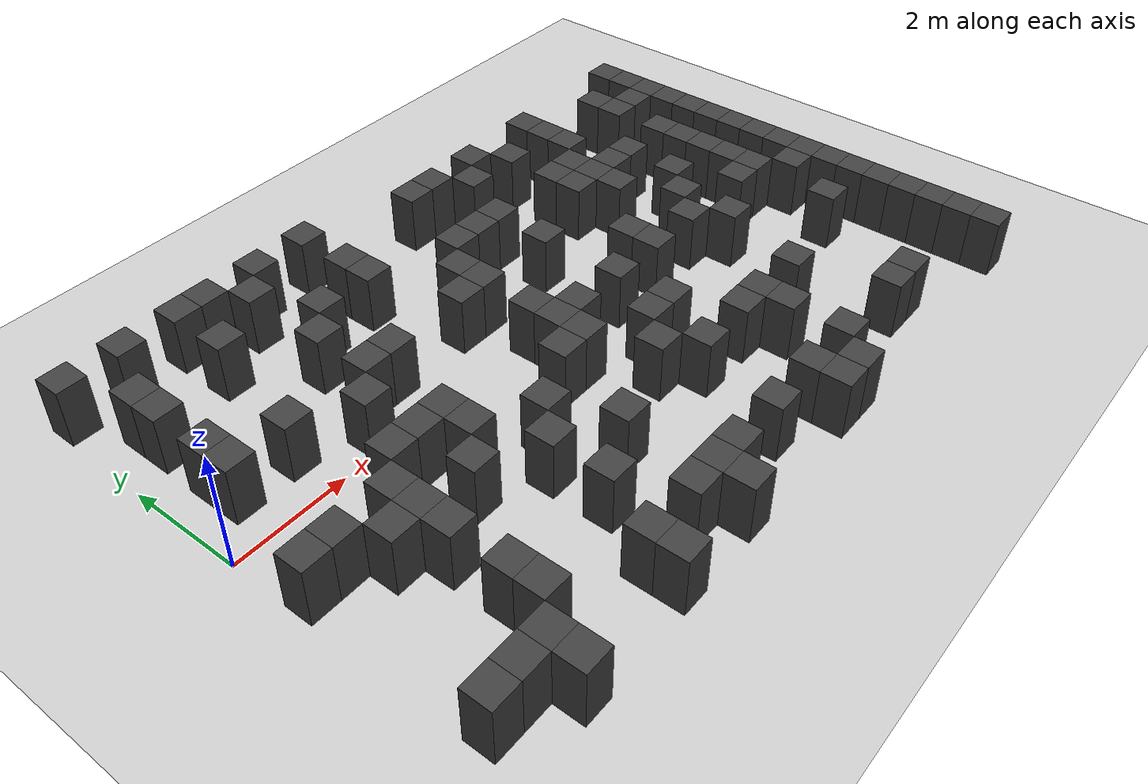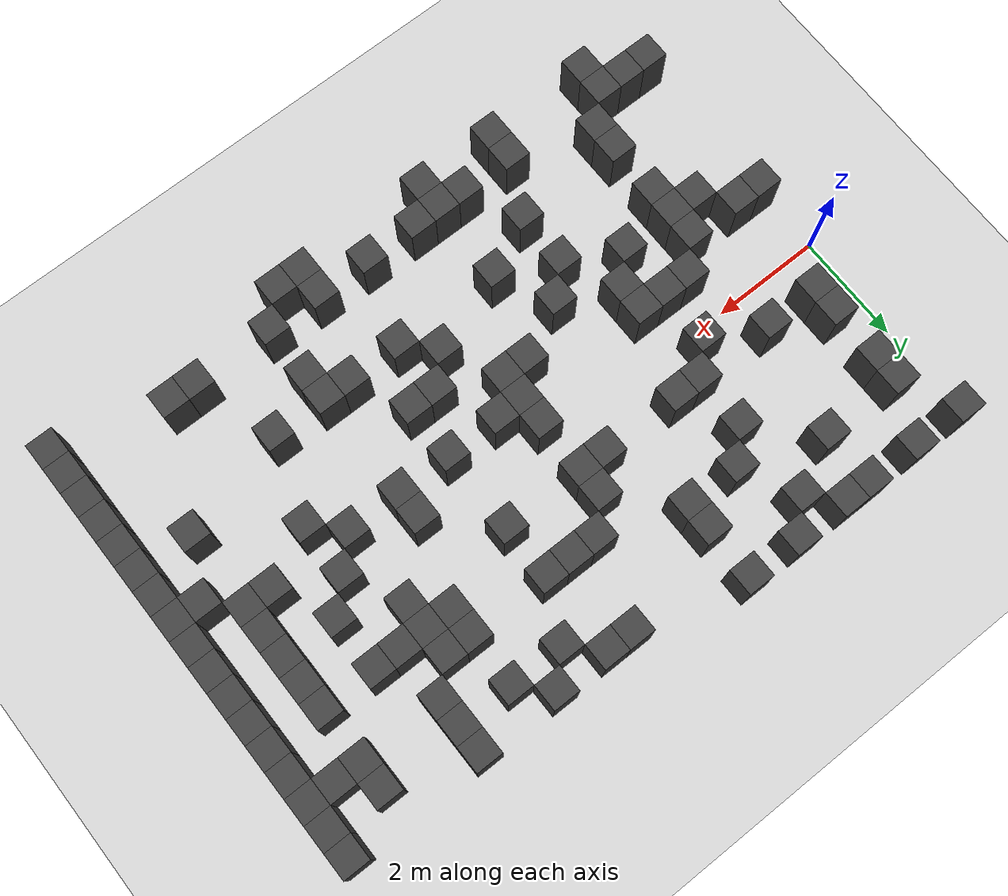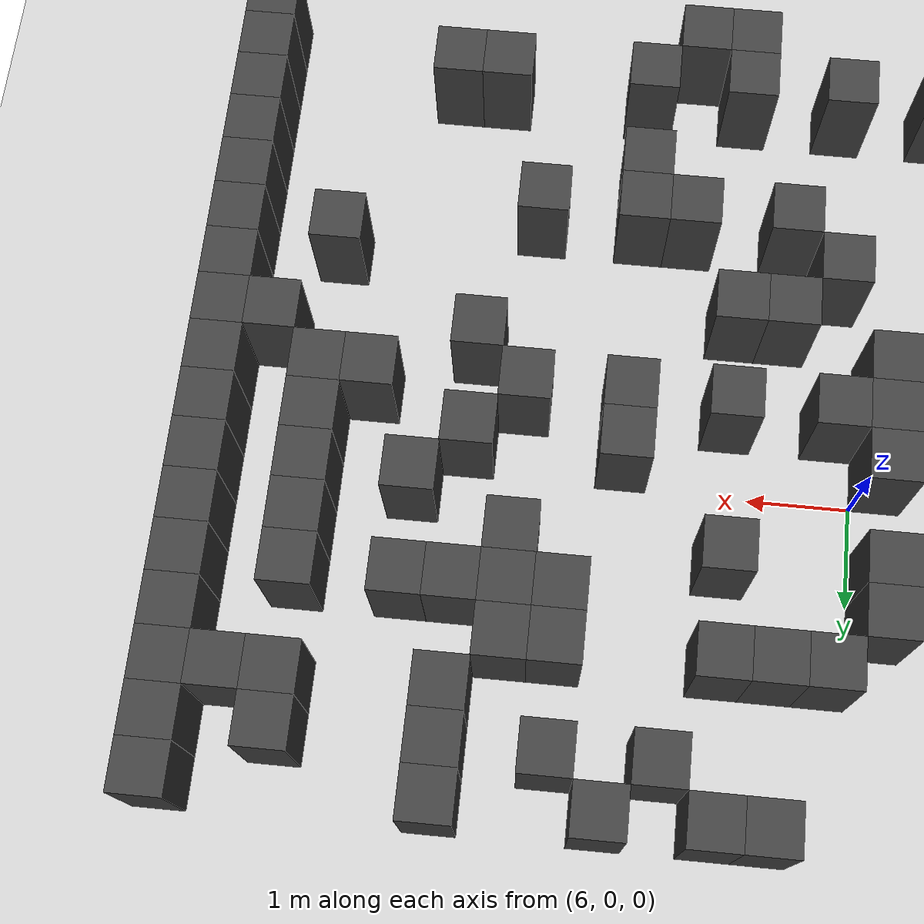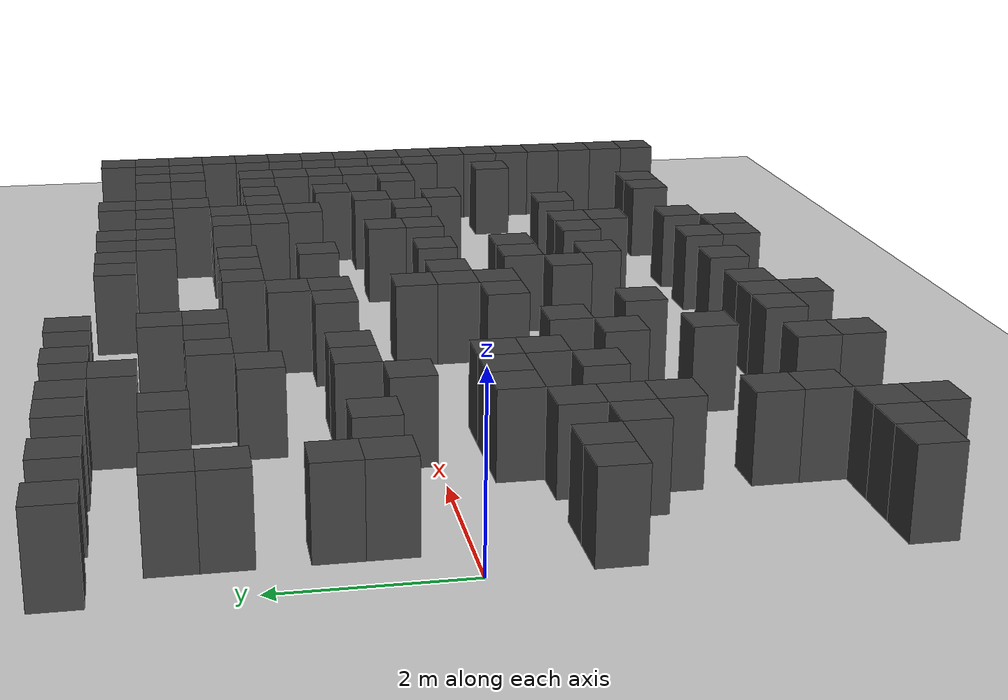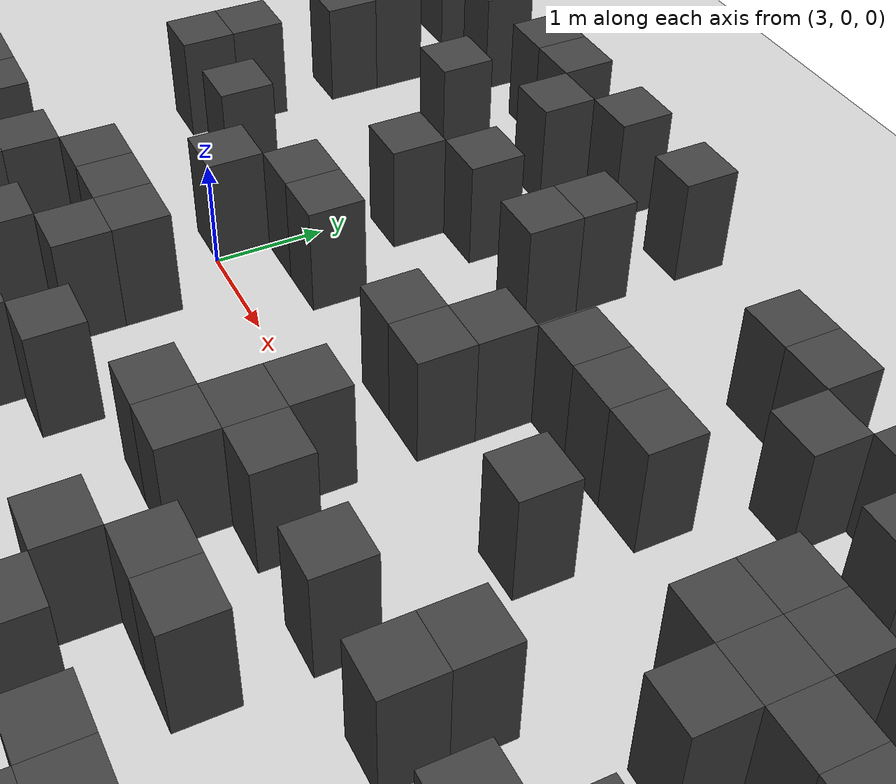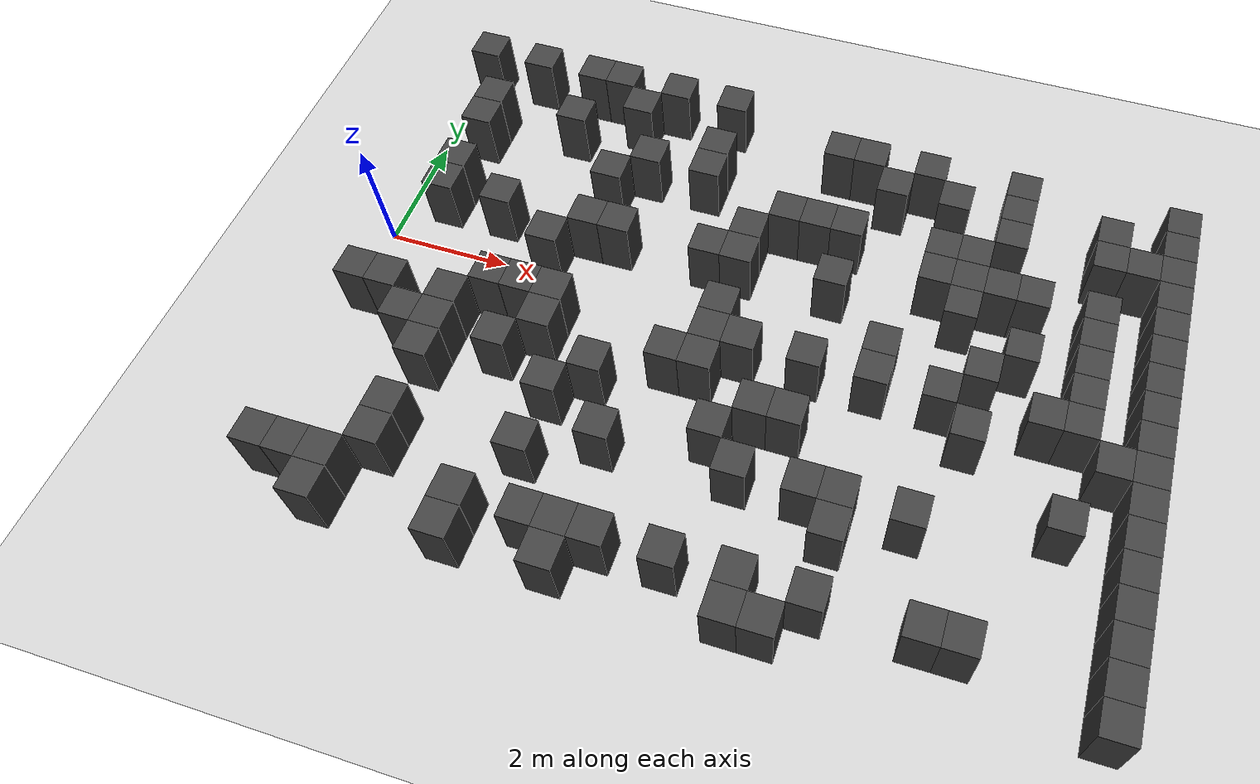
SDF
<sdf version="1.7">
 <world name="map_4951">
  <model name="ground_plane">
   <static>true</static>
   <link name="link">
    <collision name="collision">
     <geometry><plane><normal>0 0 1</normal><size>200 200</size></plane></geometry>
    </collision>
    <visual name="visual">
     <geometry><plane><normal>0 0 1</normal><size>200 200</size></plane></geometry>
     <material><ambient>0.8 0.8 0.8 1</ambient><diffuse>0.8 0.8 0.8 1</diffuse></material>
    </visual>
   </link>
  </model>
  <model name="maze_environment">
   <static>true</static>
   <link name="wall_261">
    <pose>0.250 3.750 0.500 0 0 0</pose>
    <collision name="col"><geometry><box><size>0.5 0.5 1.0</size></box></geometry></collision>
    <visual name="vis">
     <geometry><box><size>0.5 0.5 1.0</size></box></geometry>
     <material><ambient>0.15 0.15 0.15 1</ambient><diffuse>0.25 0.25 0.25 1</diffuse></material>
    </visual>
   </link>
   <link name="wall_262">
    <pose>1.250 3.750 0.500 0 0 0</pose>
    <collision name="col"><geometry><box><size>0.5 0.5 1.0</size></box></geometry></collision>
    <visual name="vis">
     <geometry><box><size>0.5 0.5 1.0</size></box></geometry>
     <material><ambient>0.15 0.15 0.15 1</ambient><diffuse>0.25 0.25 0.25 1</diffuse></material>
    </visual>
   </link>
   <link name="wall_263">
    <pose>2.250 3.750 0.500 0 0 0</pose>
    <collision name="col"><geometry><box><size>0.5 0.5 1.0</size></box></geometry></collision>
    <visual name="vis">
     <geometry><box><size>0.5 0.5 1.0</size></box></geometry>
     <material><ambient>0.15 0.15 0.15 1</ambient><diffuse>0.25 0.25 0.25 1</diffuse></material>
    </visual>
   </link>
   <link name="wall_264">
    <pose>2.750 3.750 0.500 0 0 0</pose>
    <collision name="col"><geometry><box><size>0.5 0.5 1.0</size></box></geometry></collision>
    <visual name="vis">
     <geometry><box><size>0.5 0.5 1.0</size></box></geometry>
     <material><ambient>0.15 0.15 0.15 1</ambient><diffuse>0.25 0.25 0.25 1</diffuse></material>
    </visual>
   </link>
   <link name="wall_265">
    <pose>3.750 3.750 0.500 0 0 0</pose>
    <collision name="col"><geometry><box><size>0.5 0.5 1.0</size></box></geometry></collision>
    <visual name="vis">
     <geometry><box><size>0.5 0.5 1.0</size></box></geometry>
     <material><ambient>0.15 0.15 0.15 1</ambient><diffuse>0.25 0.25 0.25 1</diffuse></material>
    </visual>
   </link>
   <link name="wall_266">
    <pose>4.750 3.750 0.500 0 0 0</pose>
    <collision name="col"><geometry><box><size>0.5 0.5 1.0</size></box></geometry></collision>
    <visual name="vis">
     <geometry><box><size>0.5 0.5 1.0</size></box></geometry>
     <material><ambient>0.15 0.15 0.15 1</ambient><diffuse>0.25 0.25 0.25 1</diffuse></material>
    </visual>
   </link>
   <link name="wall_275">
    <pose>3.250 3.250 0.500 0 0 0</pose>
    <collision name="col"><geometry><box><size>0.5 0.5 1.0</size></box></geometry></collision>
    <visual name="vis">
     <geometry><box><size>0.5 0.5 1.0</size></box></geometry>
     <material><ambient>0.15 0.15 0.15 1</ambient><diffuse>0.25 0.25 0.25 1</diffuse></material>
    </visual>
   </link>
   <link name="wall_276">
    <pose>6.750 3.250 0.500 0 0 0</pose>
    <collision name="col"><geometry><box><size>0.5 0.5 1.0</size></box></geometry></collision>
    <visual name="vis">
     <geometry><box><size>0.5 0.5 1.0</size></box></geometry>
     <material><ambient>0.15 0.15 0.15 1</ambient><diffuse>0.25 0.25 0.25 1</diffuse></material>
    </visual>
   </link>
   <link name="wall_277">
    <pose>7.250 3.250 0.500 0 0 0</pose>
    <collision name="col"><geometry><box><size>0.5 0.5 1.0</size></box></geometry></collision>
    <visual name="vis">
     <geometry><box><size>0.5 0.5 1.0</size></box></geometry>
     <material><ambient>0.15 0.15 0.15 1</ambient><diffuse>0.25 0.25 0.25 1</diffuse></material>
    </visual>
   </link>
   <link name="wall_278">
    <pose>8.250 3.250 0.500 0 0 0</pose>
    <collision name="col"><geometry><box><size>0.5 0.5 1.0</size></box></geometry></collision>
    <visual name="vis">
     <geometry><box><size>0.5 0.5 1.0</size></box></geometry>
     <material><ambient>0.15 0.15 0.15 1</ambient><diffuse>0.25 0.25 0.25 1</diffuse></material>
    </visual>
   </link>
   <link name="wall_279">
    <pose>9.750 3.250 0.500 0 0 0</pose>
    <collision name="col"><geometry><box><size>0.5 0.5 1.0</size></box></geometry></collision>
    <visual name="vis">
     <geometry><box><size>0.5 0.5 1.0</size></box></geometry>
     <material><ambient>0.15 0.15 0.15 1</ambient><diffuse>0.25 0.25 0.25 1</diffuse></material>
    </visual>
   </link>
   <link name="wall_280">
    <pose>12.250 3.250 0.500 0 0 0</pose>
    <collision name="col"><geometry><box><size>0.5 0.5 1.0</size></box></geometry></collision>
    <visual name="vis">
     <geometry><box><size>0.5 0.5 1.0</size></box></geometry>
     <material><ambient>0.15 0.15 0.15 1</ambient><diffuse>0.25 0.25 0.25 1</diffuse></material>
    </visual>
   </link>
   <link name="wall_287">
    <pose>0.750 2.750 0.500 0 0 0</pose>
    <collision name="col"><geometry><box><size>0.5 0.5 1.0</size></box></geometry></collision>
    <visual name="vis">
     <geometry><box><size>0.5 0.5 1.0</size></box></geometry>
     <material><ambient>0.15 0.15 0.15 1</ambient><diffuse>0.25 0.25 0.25 1</diffuse></material>
    </visual>
   </link>
   <link name="wall_288">
    <pose>2.250 2.750 0.500 0 0 0</pose>
    <collision name="col"><geometry><box><size>0.5 0.5 1.0</size></box></geometry></collision>
    <visual name="vis">
     <geometry><box><size>0.5 0.5 1.0</size></box></geometry>
     <material><ambient>0.15 0.15 0.15 1</ambient><diffuse>0.25 0.25 0.25 1</diffuse></material>
    </visual>
   </link>
   <link name="wall_289">
    <pose>4.750 2.750 0.500 0 0 0</pose>
    <collision name="col"><geometry><box><size>0.5 0.5 1.0</size></box></geometry></collision>
    <visual name="vis">
     <geometry><box><size>0.5 0.5 1.0</size></box></geometry>
     <material><ambient>0.15 0.15 0.15 1</ambient><diffuse>0.25 0.25 0.25 1</diffuse></material>
    </visual>
   </link>
   <link name="wall_290">
    <pose>7.750 2.750 0.500 0 0 0</pose>
    <collision name="col"><geometry><box><size>0.5 0.5 1.0</size></box></geometry></collision>
    <visual name="vis">
     <geometry><box><size>0.5 0.5 1.0</size></box></geometry>
     <material><ambient>0.15 0.15 0.15 1</ambient><diffuse>0.25 0.25 0.25 1</diffuse></material>
    </visual>
   </link>
   <link name="wall_291">
    <pose>8.750 2.750 0.500 0 0 0</pose>
    <collision name="col"><geometry><box><size>0.5 0.5 1.0</size></box></geometry></collision>
    <visual name="vis">
     <geometry><box><size>0.5 0.5 1.0</size></box></geometry>
     <material><ambient>0.15 0.15 0.15 1</ambient><diffuse>0.25 0.25 0.25 1</diffuse></material>
    </visual>
   </link>
   <link name="wall_292">
    <pose>9.750 2.750 0.500 0 0 0</pose>
    <collision name="col"><geometry><box><size>0.5 0.5 1.0</size></box></geometry></collision>
    <visual name="vis">
     <geometry><box><size>0.5 0.5 1.0</size></box></geometry>
     <material><ambient>0.15 0.15 0.15 1</ambient><diffuse>0.25 0.25 0.25 1</diffuse></material>
    </visual>
   </link>
   <link name="wall_293">
    <pose>11.250 2.750 0.500 0 0 0</pose>
    <collision name="col"><geometry><box><size>0.5 0.5 1.0</size></box></geometry></collision>
    <visual name="vis">
     <geometry><box><size>0.5 0.5 1.0</size></box></geometry>
     <material><ambient>0.15 0.15 0.15 1</ambient><diffuse>0.25 0.25 0.25 1</diffuse></material>
    </visual>
   </link>
   <link name="wall_294">
    <pose>12.250 2.750 0.500 0 0 0</pose>
    <collision name="col"><geometry><box><size>0.5 0.5 1.0</size></box></geometry></collision>
    <visual name="vis">
     <geometry><box><size>0.5 0.5 1.0</size></box></geometry>
     <material><ambient>0.15 0.15 0.15 1</ambient><diffuse>0.25 0.25 0.25 1</diffuse></material>
    </visual>
   </link>
   <link name="wall_300">
    <pose>0.750 2.250 0.500 0 0 0</pose>
    <collision name="col"><geometry><box><size>0.5 0.5 1.0</size></box></geometry></collision>
    <visual name="vis">
     <geometry><box><size>0.5 0.5 1.0</size></box></geometry>
     <material><ambient>0.15 0.15 0.15 1</ambient><diffuse>0.25 0.25 0.25 1</diffuse></material>
    </visual>
   </link>
   <link name="wall_301">
    <pose>3.750 2.250 0.500 0 0 0</pose>
    <collision name="col"><geometry><box><size>0.5 0.5 1.0</size></box></geometry></collision>
    <visual name="vis">
     <geometry><box><size>0.5 0.5 1.0</size></box></geometry>
     <material><ambient>0.15 0.15 0.15 1</ambient><diffuse>0.25 0.25 0.25 1</diffuse></material>
    </visual>
   </link>
   <link name="wall_302">
    <pose>4.750 2.250 0.500 0 0 0</pose>
    <collision name="col"><geometry><box><size>0.5 0.5 1.0</size></box></geometry></collision>
    <visual name="vis">
     <geometry><box><size>0.5 0.5 1.0</size></box></geometry>
     <material><ambient>0.15 0.15 0.15 1</ambient><diffuse>0.25 0.25 0.25 1</diffuse></material>
    </visual>
   </link>
   <link name="wall_303">
    <pose>9.750 2.250 0.500 0 0 0</pose>
    <collision name="col"><geometry><box><size>0.5 0.5 1.0</size></box></geometry></collision>
    <visual name="vis">
     <geometry><box><size>0.5 0.5 1.0</size></box></geometry>
     <material><ambient>0.15 0.15 0.15 1</ambient><diffuse>0.25 0.25 0.25 1</diffuse></material>
    </visual>
   </link>
   <link name="wall_304">
    <pose>11.250 2.250 0.500 0 0 0</pose>
    <collision name="col"><geometry><box><size>0.5 0.5 1.0</size></box></geometry></collision>
    <visual name="vis">
     <geometry><box><size>0.5 0.5 1.0</size></box></geometry>
     <material><ambient>0.15 0.15 0.15 1</ambient><diffuse>0.25 0.25 0.25 1</diffuse></material>
    </visual>
   </link>
   <link name="wall_305">
    <pose>11.750 2.250 0.500 0 0 0</pose>
    <collision name="col"><geometry><box><size>0.5 0.5 1.0</size></box></geometry></collision>
    <visual name="vis">
     <geometry><box><size>0.5 0.5 1.0</size></box></geometry>
     <material><ambient>0.15 0.15 0.15 1</ambient><diffuse>0.25 0.25 0.25 1</diffuse></material>
    </visual>
   </link>
   <link name="wall_306">
    <pose>12.250 2.250 0.500 0 0 0</pose>
    <collision name="col"><geometry><box><size>0.5 0.5 1.0</size></box></geometry></collision>
    <visual name="vis">
     <geometry><box><size>0.5 0.5 1.0</size></box></geometry>
     <material><ambient>0.15 0.15 0.15 1</ambient><diffuse>0.25 0.25 0.25 1</diffuse></material>
    </visual>
   </link>
   <link name="wall_312">
    <pose>3.250 1.750 0.500 0 0 0</pose>
    <collision name="col"><geometry><box><size>0.5 0.5 1.0</size></box></geometry></collision>
    <visual name="vis">
     <geometry><box><size>0.5 0.5 1.0</size></box></geometry>
     <material><ambient>0.15 0.15 0.15 1</ambient><diffuse>0.25 0.25 0.25 1</diffuse></material>
    </visual>
   </link>
   <link name="wall_313">
    <pose>6.250 1.750 0.500 0 0 0</pose>
    <collision name="col"><geometry><box><size>0.5 0.5 1.0</size></box></geometry></collision>
    <visual name="vis">
     <geometry><box><size>0.5 0.5 1.0</size></box></geometry>
     <material><ambient>0.15 0.15 0.15 1</ambient><diffuse>0.25 0.25 0.25 1</diffuse></material>
    </visual>
   </link>
   <link name="wall_314">
    <pose>6.750 1.750 0.500 0 0 0</pose>
    <collision name="col"><geometry><box><size>0.5 0.5 1.0</size></box></geometry></collision>
    <visual name="vis">
     <geometry><box><size>0.5 0.5 1.0</size></box></geometry>
     <material><ambient>0.15 0.15 0.15 1</ambient><diffuse>0.25 0.25 0.25 1</diffuse></material>
    </visual>
   </link>
   <link name="wall_315">
    <pose>7.250 1.750 0.500 0 0 0</pose>
    <collision name="col"><geometry><box><size>0.5 0.5 1.0</size></box></geometry></collision>
    <visual name="vis">
     <geometry><box><size>0.5 0.5 1.0</size></box></geometry>
     <material><ambient>0.15 0.15 0.15 1</ambient><diffuse>0.25 0.25 0.25 1</diffuse></material>
    </visual>
   </link>
   <link name="wall_316">
    <pose>8.750 1.750 0.500 0 0 0</pose>
    <collision name="col"><geometry><box><size>0.5 0.5 1.0</size></box></geometry></collision>
    <visual name="vis">
     <geometry><box><size>0.5 0.5 1.0</size></box></geometry>
     <material><ambient>0.15 0.15 0.15 1</ambient><diffuse>0.25 0.25 0.25 1</diffuse></material>
    </visual>
   </link>
   <link name="wall_317">
    <pose>9.250 1.750 0.500 0 0 0</pose>
    <collision name="col"><geometry><box><size>0.5 0.5 1.0</size></box></geometry></collision>
    <visual name="vis">
     <geometry><box><size>0.5 0.5 1.0</size></box></geometry>
     <material><ambient>0.15 0.15 0.15 1</ambient><diffuse>0.25 0.25 0.25 1</diffuse></material>
    </visual>
   </link>
   <link name="wall_318">
    <pose>12.250 1.750 0.500 0 0 0</pose>
    <collision name="col"><geometry><box><size>0.5 0.5 1.0</size></box></geometry></collision>
    <visual name="vis">
     <geometry><box><size>0.5 0.5 1.0</size></box></geometry>
     <material><ambient>0.15 0.15 0.15 1</ambient><diffuse>0.25 0.25 0.25 1</diffuse></material>
    </visual>
   </link>
   <link name="wall_326">
    <pose>0.750 1.250 0.500 0 0 0</pose>
    <collision name="col"><geometry><box><size>0.5 0.5 1.0</size></box></geometry></collision>
    <visual name="vis">
     <geometry><box><size>0.5 0.5 1.0</size></box></geometry>
     <material><ambient>0.15 0.15 0.15 1</ambient><diffuse>0.25 0.25 0.25 1</diffuse></material>
    </visual>
   </link>
   <link name="wall_327">
    <pose>5.750 1.250 0.500 0 0 0</pose>
    <collision name="col"><geometry><box><size>0.5 0.5 1.0</size></box></geometry></collision>
    <visual name="vis">
     <geometry><box><size>0.5 0.5 1.0</size></box></geometry>
     <material><ambient>0.15 0.15 0.15 1</ambient><diffuse>0.25 0.25 0.25 1</diffuse></material>
    </visual>
   </link>
   <link name="wall_328">
    <pose>8.750 1.250 0.500 0 0 0</pose>
    <collision name="col"><geometry><box><size>0.5 0.5 1.0</size></box></geometry></collision>
    <visual name="vis">
     <geometry><box><size>0.5 0.5 1.0</size></box></geometry>
     <material><ambient>0.15 0.15 0.15 1</ambient><diffuse>0.25 0.25 0.25 1</diffuse></material>
    </visual>
   </link>
   <link name="wall_329">
    <pose>9.250 1.250 0.500 0 0 0</pose>
    <collision name="col"><geometry><box><size>0.5 0.5 1.0</size></box></geometry></collision>
    <visual name="vis">
     <geometry><box><size>0.5 0.5 1.0</size></box></geometry>
     <material><ambient>0.15 0.15 0.15 1</ambient><diffuse>0.25 0.25 0.25 1</diffuse></material>
    </visual>
   </link>
   <link name="wall_330">
    <pose>9.750 1.250 0.500 0 0 0</pose>
    <collision name="col"><geometry><box><size>0.5 0.5 1.0</size></box></geometry></collision>
    <visual name="vis">
     <geometry><box><size>0.5 0.5 1.0</size></box></geometry>
     <material><ambient>0.15 0.15 0.15 1</ambient><diffuse>0.25 0.25 0.25 1</diffuse></material>
    </visual>
   </link>
   <link name="wall_331">
    <pose>10.250 1.250 0.500 0 0 0</pose>
    <collision name="col"><geometry><box><size>0.5 0.5 1.0</size></box></geometry></collision>
    <visual name="vis">
     <geometry><box><size>0.5 0.5 1.0</size></box></geometry>
     <material><ambient>0.15 0.15 0.15 1</ambient><diffuse>0.25 0.25 0.25 1</diffuse></material>
    </visual>
   </link>
   <link name="wall_332">
    <pose>11.250 1.250 0.500 0 0 0</pose>
    <collision name="col"><geometry><box><size>0.5 0.5 1.0</size></box></geometry></collision>
    <visual name="vis">
     <geometry><box><size>0.5 0.5 1.0</size></box></geometry>
     <material><ambient>0.15 0.15 0.15 1</ambient><diffuse>0.25 0.25 0.25 1</diffuse></material>
    </visual>
   </link>
   <link name="wall_333">
    <pose>12.250 1.250 0.500 0 0 0</pose>
    <collision name="col"><geometry><box><size>0.5 0.5 1.0</size></box></geometry></collision>
    <visual name="vis">
     <geometry><box><size>0.5 0.5 1.0</size></box></geometry>
     <material><ambient>0.15 0.15 0.15 1</ambient><diffuse>0.25 0.25 0.25 1</diffuse></material>
    </visual>
   </link>
   <link name="wall_343">
    <pose>0.750 0.750 0.500 0 0 0</pose>
    <collision name="col"><geometry><box><size>0.5 0.5 1.0</size></box></geometry></collision>
    <visual name="vis">
     <geometry><box><size>0.5 0.5 1.0</size></box></geometry>
     <material><ambient>0.15 0.15 0.15 1</ambient><diffuse>0.25 0.25 0.25 1</diffuse></material>
    </visual>
   </link>
   <link name="wall_344">
    <pose>1.750 0.750 0.500 0 0 0</pose>
    <collision name="col"><geometry><box><size>0.5 0.5 1.0</size></box></geometry></collision>
    <visual name="vis">
     <geometry><box><size>0.5 0.5 1.0</size></box></geometry>
     <material><ambient>0.15 0.15 0.15 1</ambient><diffuse>0.25 0.25 0.25 1</diffuse></material>
    </visual>
   </link>
   <link name="wall_345">
    <pose>3.250 0.750 0.500 0 0 0</pose>
    <collision name="col"><geometry><box><size>0.5 0.5 1.0</size></box></geometry></collision>
    <visual name="vis">
     <geometry><box><size>0.5 0.5 1.0</size></box></geometry>
     <material><ambient>0.15 0.15 0.15 1</ambient><diffuse>0.25 0.25 0.25 1</diffuse></material>
    </visual>
   </link>
   <link name="wall_346">
    <pose>3.750 0.750 0.500 0 0 0</pose>
    <collision name="col"><geometry><box><size>0.5 0.5 1.0</size></box></geometry></collision>
    <visual name="vis">
     <geometry><box><size>0.5 0.5 1.0</size></box></geometry>
     <material><ambient>0.15 0.15 0.15 1</ambient><diffuse>0.25 0.25 0.25 1</diffuse></material>
    </visual>
   </link>
   <link name="wall_347">
    <pose>5.250 0.750 0.500 0 0 0</pose>
    <collision name="col"><geometry><box><size>0.5 0.5 1.0</size></box></geometry></collision>
    <visual name="vis">
     <geometry><box><size>0.5 0.5 1.0</size></box></geometry>
     <material><ambient>0.15 0.15 0.15 1</ambient><diffuse>0.25 0.25 0.25 1</diffuse></material>
    </visual>
   </link>
   <link name="wall_348">
    <pose>5.750 0.750 0.500 0 0 0</pose>
    <collision name="col"><geometry><box><size>0.5 0.5 1.0</size></box></geometry></collision>
    <visual name="vis">
     <geometry><box><size>0.5 0.5 1.0</size></box></geometry>
     <material><ambient>0.15 0.15 0.15 1</ambient><diffuse>0.25 0.25 0.25 1</diffuse></material>
    </visual>
   </link>
   <link name="wall_349">
    <pose>7.250 0.750 0.500 0 0 0</pose>
    <collision name="col"><geometry><box><size>0.5 0.5 1.0</size></box></geometry></collision>
    <visual name="vis">
     <geometry><box><size>0.5 0.5 1.0</size></box></geometry>
     <material><ambient>0.15 0.15 0.15 1</ambient><diffuse>0.25 0.25 0.25 1</diffuse></material>
    </visual>
   </link>
   <link name="wall_350">
    <pose>9.250 0.750 0.500 0 0 0</pose>
    <collision name="col"><geometry><box><size>0.5 0.5 1.0</size></box></geometry></collision>
    <visual name="vis">
     <geometry><box><size>0.5 0.5 1.0</size></box></geometry>
     <material><ambient>0.15 0.15 0.15 1</ambient><diffuse>0.25 0.25 0.25 1</diffuse></material>
    </visual>
   </link>
   <link name="wall_351">
    <pose>11.250 0.750 0.500 0 0 0</pose>
    <collision name="col"><geometry><box><size>0.5 0.5 1.0</size></box></geometry></collision>
    <visual name="vis">
     <geometry><box><size>0.5 0.5 1.0</size></box></geometry>
     <material><ambient>0.15 0.15 0.15 1</ambient><diffuse>0.25 0.25 0.25 1</diffuse></material>
    </visual>
   </link>
   <link name="wall_352">
    <pose>12.250 0.750 0.500 0 0 0</pose>
    <collision name="col"><geometry><box><size>0.5 0.5 1.0</size></box></geometry></collision>
    <visual name="vis">
     <geometry><box><size>0.5 0.5 1.0</size></box></geometry>
     <material><ambient>0.15 0.15 0.15 1</ambient><diffuse>0.25 0.25 0.25 1</diffuse></material>
    </visual>
   </link>
   <link name="wall_360">
    <pose>2.750 0.250 0.500 0 0 0</pose>
    <collision name="col"><geometry><box><size>0.5 0.5 1.0</size></box></geometry></collision>
    <visual name="vis">
     <geometry><box><size>0.5 0.5 1.0</size></box></geometry>
     <material><ambient>0.15 0.15 0.15 1</ambient><diffuse>0.25 0.25 0.25 1</diffuse></material>
    </visual>
   </link>
   <link name="wall_361">
    <pose>10.250 0.250 0.500 0 0 0</pose>
    <collision name="col"><geometry><box><size>0.5 0.5 1.0</size></box></geometry></collision>
    <visual name="vis">
     <geometry><box><size>0.5 0.5 1.0</size></box></geometry>
     <material><ambient>0.15 0.15 0.15 1</ambient><diffuse>0.25 0.25 0.25 1</diffuse></material>
    </visual>
   </link>
   <link name="wall_362">
    <pose>11.250 0.250 0.500 0 0 0</pose>
    <collision name="col"><geometry><box><size>0.5 0.5 1.0</size></box></geometry></collision>
    <visual name="vis">
     <geometry><box><size>0.5 0.5 1.0</size></box></geometry>
     <material><ambient>0.15 0.15 0.15 1</ambient><diffuse>0.25 0.25 0.25 1</diffuse></material>
    </visual>
   </link>
   <link name="wall_363">
    <pose>12.250 0.250 0.500 0 0 0</pose>
    <collision name="col"><geometry><box><size>0.5 0.5 1.0</size></box></geometry></collision>
    <visual name="vis">
     <geometry><box><size>0.5 0.5 1.0</size></box></geometry>
     <material><ambient>0.15 0.15 0.15 1</ambient><diffuse>0.25 0.25 0.25 1</diffuse></material>
    </visual>
   </link>
   <link name="wall_370">
    <pose>5.750 -0.250 0.500 0 0 0</pose>
    <collision name="col"><geometry><box><size>0.5 0.5 1.0</size></box></geometry></collision>
    <visual name="vis">
     <geometry><box><size>0.5 0.5 1.0</size></box></geometry>
     <material><ambient>0.15 0.15 0.15 1</ambient><diffuse>0.25 0.25 0.25 1</diffuse></material>
    </visual>
   </link>
   <link name="wall_371">
    <pose>8.250 -0.250 0.500 0 0 0</pose>
    <collision name="col"><geometry><box><size>0.5 0.5 1.0</size></box></geometry></collision>
    <visual name="vis">
     <geometry><box><size>0.5 0.5 1.0</size></box></geometry>
     <material><ambient>0.15 0.15 0.15 1</ambient><diffuse>0.25 0.25 0.25 1</diffuse></material>
    </visual>
   </link>
   <link name="wall_372">
    <pose>9.750 -0.250 0.500 0 0 0</pose>
    <collision name="col"><geometry><box><size>0.5 0.5 1.0</size></box></geometry></collision>
    <visual name="vis">
     <geometry><box><size>0.5 0.5 1.0</size></box></geometry>
     <material><ambient>0.15 0.15 0.15 1</ambient><diffuse>0.25 0.25 0.25 1</diffuse></material>
    </visual>
   </link>
   <link name="wall_373">
    <pose>11.250 -0.250 0.500 0 0 0</pose>
    <collision name="col"><geometry><box><size>0.5 0.5 1.0</size></box></geometry></collision>
    <visual name="vis">
     <geometry><box><size>0.5 0.5 1.0</size></box></geometry>
     <material><ambient>0.15 0.15 0.15 1</ambient><diffuse>0.25 0.25 0.25 1</diffuse></material>
    </visual>
   </link>
   <link name="wall_374">
    <pose>12.250 -0.250 0.500 0 0 0</pose>
    <collision name="col"><geometry><box><size>0.5 0.5 1.0</size></box></geometry></collision>
    <visual name="vis">
     <geometry><box><size>0.5 0.5 1.0</size></box></geometry>
     <material><ambient>0.15 0.15 0.15 1</ambient><diffuse>0.25 0.25 0.25 1</diffuse></material>
    </visual>
   </link>
   <link name="wall_384">
    <pose>2.250 -0.750 0.500 0 0 0</pose>
    <collision name="col"><geometry><box><size>0.5 0.5 1.0</size></box></geometry></collision>
    <visual name="vis">
     <geometry><box><size>0.5 0.5 1.0</size></box></geometry>
     <material><ambient>0.15 0.15 0.15 1</ambient><diffuse>0.25 0.25 0.25 1</diffuse></material>
    </visual>
   </link>
   <link name="wall_385">
    <pose>2.750 -0.750 0.500 0 0 0</pose>
    <collision name="col"><geometry><box><size>0.5 0.5 1.0</size></box></geometry></collision>
    <visual name="vis">
     <geometry><box><size>0.5 0.5 1.0</size></box></geometry>
     <material><ambient>0.15 0.15 0.15 1</ambient><diffuse>0.25 0.25 0.25 1</diffuse></material>
    </visual>
   </link>
   <link name="wall_386">
    <pose>3.250 -0.750 0.500 0 0 0</pose>
    <collision name="col"><geometry><box><size>0.5 0.5 1.0</size></box></geometry></collision>
    <visual name="vis">
     <geometry><box><size>0.5 0.5 1.0</size></box></geometry>
     <material><ambient>0.15 0.15 0.15 1</ambient><diffuse>0.25 0.25 0.25 1</diffuse></material>
    </visual>
   </link>
   <link name="wall_387">
    <pose>5.750 -0.750 0.500 0 0 0</pose>
    <collision name="col"><geometry><box><size>0.5 0.5 1.0</size></box></geometry></collision>
    <visual name="vis">
     <geometry><box><size>0.5 0.5 1.0</size></box></geometry>
     <material><ambient>0.15 0.15 0.15 1</ambient><diffuse>0.25 0.25 0.25 1</diffuse></material>
    </visual>
   </link>
   <link name="wall_388">
    <pose>6.250 -0.750 0.500 0 0 0</pose>
    <collision name="col"><geometry><box><size>0.5 0.5 1.0</size></box></geometry></collision>
    <visual name="vis">
     <geometry><box><size>0.5 0.5 1.0</size></box></geometry>
     <material><ambient>0.15 0.15 0.15 1</ambient><diffuse>0.25 0.25 0.25 1</diffuse></material>
    </visual>
   </link>
   <link name="wall_389">
    <pose>7.250 -0.750 0.500 0 0 0</pose>
    <collision name="col"><geometry><box><size>0.5 0.5 1.0</size></box></geometry></collision>
    <visual name="vis">
     <geometry><box><size>0.5 0.5 1.0</size></box></geometry>
     <material><ambient>0.15 0.15 0.15 1</ambient><diffuse>0.25 0.25 0.25 1</diffuse></material>
    </visual>
   </link>
   <link name="wall_390">
    <pose>8.250 -0.750 0.500 0 0 0</pose>
    <collision name="col"><geometry><box><size>0.5 0.5 1.0</size></box></geometry></collision>
    <visual name="vis">
     <geometry><box><size>0.5 0.5 1.0</size></box></geometry>
     <material><ambient>0.15 0.15 0.15 1</ambient><diffuse>0.25 0.25 0.25 1</diffuse></material>
    </visual>
   </link>
   <link name="wall_391">
    <pose>9.250 -0.750 0.500 0 0 0</pose>
    <collision name="col"><geometry><box><size>0.5 0.5 1.0</size></box></geometry></collision>
    <visual name="vis">
     <geometry><box><size>0.5 0.5 1.0</size></box></geometry>
     <material><ambient>0.15 0.15 0.15 1</ambient><diffuse>0.25 0.25 0.25 1</diffuse></material>
    </visual>
   </link>
   <link name="wall_392">
    <pose>10.750 -0.750 0.500 0 0 0</pose>
    <collision name="col"><geometry><box><size>0.5 0.5 1.0</size></box></geometry></collision>
    <visual name="vis">
     <geometry><box><size>0.5 0.5 1.0</size></box></geometry>
     <material><ambient>0.15 0.15 0.15 1</ambient><diffuse>0.25 0.25 0.25 1</diffuse></material>
    </visual>
   </link>
   <link name="wall_393">
    <pose>11.250 -0.750 0.500 0 0 0</pose>
    <collision name="col"><geometry><box><size>0.5 0.5 1.0</size></box></geometry></collision>
    <visual name="vis">
     <geometry><box><size>0.5 0.5 1.0</size></box></geometry>
     <material><ambient>0.15 0.15 0.15 1</ambient><diffuse>0.25 0.25 0.25 1</diffuse></material>
    </visual>
   </link>
   <link name="wall_394">
    <pose>12.250 -0.750 0.500 0 0 0</pose>
    <collision name="col"><geometry><box><size>0.5 0.5 1.0</size></box></geometry></collision>
    <visual name="vis">
     <geometry><box><size>0.5 0.5 1.0</size></box></geometry>
     <material><ambient>0.15 0.15 0.15 1</ambient><diffuse>0.25 0.25 0.25 1</diffuse></material>
    </visual>
   </link>
   <link name="wall_399">
    <pose>0.250 -1.250 0.500 0 0 0</pose>
    <collision name="col"><geometry><box><size>0.5 0.5 1.0</size></box></geometry></collision>
    <visual name="vis">
     <geometry><box><size>0.5 0.5 1.0</size></box></geometry>
     <material><ambient>0.15 0.15 0.15 1</ambient><diffuse>0.25 0.25 0.25 1</diffuse></material>
    </visual>
   </link>
   <link name="wall_400">
    <pose>0.750 -1.250 0.500 0 0 0</pose>
    <collision name="col"><geometry><box><size>0.5 0.5 1.0</size></box></geometry></collision>
    <visual name="vis">
     <geometry><box><size>0.5 0.5 1.0</size></box></geometry>
     <material><ambient>0.15 0.15 0.15 1</ambient><diffuse>0.25 0.25 0.25 1</diffuse></material>
    </visual>
   </link>
   <link name="wall_401">
    <pose>1.750 -1.250 0.500 0 0 0</pose>
    <collision name="col"><geometry><box><size>0.5 0.5 1.0</size></box></geometry></collision>
    <visual name="vis">
     <geometry><box><size>0.5 0.5 1.0</size></box></geometry>
     <material><ambient>0.15 0.15 0.15 1</ambient><diffuse>0.25 0.25 0.25 1</diffuse></material>
    </visual>
   </link>
   <link name="wall_402">
    <pose>3.250 -1.250 0.500 0 0 0</pose>
    <collision name="col"><geometry><box><size>0.5 0.5 1.0</size></box></geometry></collision>
    <visual name="vis">
     <geometry><box><size>0.5 0.5 1.0</size></box></geometry>
     <material><ambient>0.15 0.15 0.15 1</ambient><diffuse>0.25 0.25 0.25 1</diffuse></material>
    </visual>
   </link>
   <link name="wall_403">
    <pose>5.250 -1.250 0.500 0 0 0</pose>
    <collision name="col"><geometry><box><size>0.5 0.5 1.0</size></box></geometry></collision>
    <visual name="vis">
     <geometry><box><size>0.5 0.5 1.0</size></box></geometry>
     <material><ambient>0.15 0.15 0.15 1</ambient><diffuse>0.25 0.25 0.25 1</diffuse></material>
    </visual>
   </link>
   <link name="wall_404">
    <pose>5.750 -1.250 0.500 0 0 0</pose>
    <collision name="col"><geometry><box><size>0.5 0.5 1.0</size></box></geometry></collision>
    <visual name="vis">
     <geometry><box><size>0.5 0.5 1.0</size></box></geometry>
     <material><ambient>0.15 0.15 0.15 1</ambient><diffuse>0.25 0.25 0.25 1</diffuse></material>
    </visual>
   </link>
   <link name="wall_405">
    <pose>9.750 -1.250 0.500 0 0 0</pose>
    <collision name="col"><geometry><box><size>0.5 0.5 1.0</size></box></geometry></collision>
    <visual name="vis">
     <geometry><box><size>0.5 0.5 1.0</size></box></geometry>
     <material><ambient>0.15 0.15 0.15 1</ambient><diffuse>0.25 0.25 0.25 1</diffuse></material>
    </visual>
   </link>
   <link name="wall_406">
    <pose>11.750 -1.250 0.500 0 0 0</pose>
    <collision name="col"><geometry><box><size>0.5 0.5 1.0</size></box></geometry></collision>
    <visual name="vis">
     <geometry><box><size>0.5 0.5 1.0</size></box></geometry>
     <material><ambient>0.15 0.15 0.15 1</ambient><diffuse>0.25 0.25 0.25 1</diffuse></material>
    </visual>
   </link>
   <link name="wall_407">
    <pose>12.250 -1.250 0.500 0 0 0</pose>
    <collision name="col"><geometry><box><size>0.5 0.5 1.0</size></box></geometry></collision>
    <visual name="vis">
     <geometry><box><size>0.5 0.5 1.0</size></box></geometry>
     <material><ambient>0.15 0.15 0.15 1</ambient><diffuse>0.25 0.25 0.25 1</diffuse></material>
    </visual>
   </link>
   <link name="wall_414">
    <pose>1.250 -1.750 0.500 0 0 0</pose>
    <collision name="col"><geometry><box><size>0.5 0.5 1.0</size></box></geometry></collision>
    <visual name="vis">
     <geometry><box><size>0.5 0.5 1.0</size></box></geometry>
     <material><ambient>0.15 0.15 0.15 1</ambient><diffuse>0.25 0.25 0.25 1</diffuse></material>
    </visual>
   </link>
   <link name="wall_415">
    <pose>1.750 -1.750 0.500 0 0 0</pose>
    <collision name="col"><geometry><box><size>0.5 0.5 1.0</size></box></geometry></collision>
    <visual name="vis">
     <geometry><box><size>0.5 0.5 1.0</size></box></geometry>
     <material><ambient>0.15 0.15 0.15 1</ambient><diffuse>0.25 0.25 0.25 1</diffuse></material>
    </visual>
   </link>
   <link name="wall_416">
    <pose>2.750 -1.750 0.500 0 0 0</pose>
    <collision name="col"><geometry><box><size>0.5 0.5 1.0</size></box></geometry></collision>
    <visual name="vis">
     <geometry><box><size>0.5 0.5 1.0</size></box></geometry>
     <material><ambient>0.15 0.15 0.15 1</ambient><diffuse>0.25 0.25 0.25 1</diffuse></material>
    </visual>
   </link>
   <link name="wall_417">
    <pose>4.250 -1.750 0.500 0 0 0</pose>
    <collision name="col"><geometry><box><size>0.5 0.5 1.0</size></box></geometry></collision>
    <visual name="vis">
     <geometry><box><size>0.5 0.5 1.0</size></box></geometry>
     <material><ambient>0.15 0.15 0.15 1</ambient><diffuse>0.25 0.25 0.25 1</diffuse></material>
    </visual>
   </link>
   <link name="wall_418">
    <pose>6.750 -1.750 0.500 0 0 0</pose>
    <collision name="col"><geometry><box><size>0.5 0.5 1.0</size></box></geometry></collision>
    <visual name="vis">
     <geometry><box><size>0.5 0.5 1.0</size></box></geometry>
     <material><ambient>0.15 0.15 0.15 1</ambient><diffuse>0.25 0.25 0.25 1</diffuse></material>
    </visual>
   </link>
   <link name="wall_419">
    <pose>7.250 -1.750 0.500 0 0 0</pose>
    <collision name="col"><geometry><box><size>0.5 0.5 1.0</size></box></geometry></collision>
    <visual name="vis">
     <geometry><box><size>0.5 0.5 1.0</size></box></geometry>
     <material><ambient>0.15 0.15 0.15 1</ambient><diffuse>0.25 0.25 0.25 1</diffuse></material>
    </visual>
   </link>
   <link name="wall_420">
    <pose>12.250 -1.750 0.500 0 0 0</pose>
    <collision name="col"><geometry><box><size>0.5 0.5 1.0</size></box></geometry></collision>
    <visual name="vis">
     <geometry><box><size>0.5 0.5 1.0</size></box></geometry>
     <material><ambient>0.15 0.15 0.15 1</ambient><diffuse>0.25 0.25 0.25 1</diffuse></material>
    </visual>
   </link>
   <link name="wall_425">
    <pose>1.750 -2.250 0.500 0 0 0</pose>
    <collision name="col"><geometry><box><size>0.5 0.5 1.0</size></box></geometry></collision>
    <visual name="vis">
     <geometry><box><size>0.5 0.5 1.0</size></box></geometry>
     <material><ambient>0.15 0.15 0.15 1</ambient><diffuse>0.25 0.25 0.25 1</diffuse></material>
    </visual>
   </link>
   <link name="wall_426">
    <pose>3.750 -2.250 0.500 0 0 0</pose>
    <collision name="col"><geometry><box><size>0.5 0.5 1.0</size></box></geometry></collision>
    <visual name="vis">
     <geometry><box><size>0.5 0.5 1.0</size></box></geometry>
     <material><ambient>0.15 0.15 0.15 1</ambient><diffuse>0.25 0.25 0.25 1</diffuse></material>
    </visual>
   </link>
   <link name="wall_427">
    <pose>6.250 -2.250 0.500 0 0 0</pose>
    <collision name="col"><geometry><box><size>0.5 0.5 1.0</size></box></geometry></collision>
    <visual name="vis">
     <geometry><box><size>0.5 0.5 1.0</size></box></geometry>
     <material><ambient>0.15 0.15 0.15 1</ambient><diffuse>0.25 0.25 0.25 1</diffuse></material>
    </visual>
   </link>
   <link name="wall_428">
    <pose>11.250 -2.250 0.500 0 0 0</pose>
    <collision name="col"><geometry><box><size>0.5 0.5 1.0</size></box></geometry></collision>
    <visual name="vis">
     <geometry><box><size>0.5 0.5 1.0</size></box></geometry>
     <material><ambient>0.15 0.15 0.15 1</ambient><diffuse>0.25 0.25 0.25 1</diffuse></material>
    </visual>
   </link>
   <link name="wall_429">
    <pose>12.250 -2.250 0.500 0 0 0</pose>
    <collision name="col"><geometry><box><size>0.5 0.5 1.0</size></box></geometry></collision>
    <visual name="vis">
     <geometry><box><size>0.5 0.5 1.0</size></box></geometry>
     <material><ambient>0.15 0.15 0.15 1</ambient><diffuse>0.25 0.25 0.25 1</diffuse></material>
    </visual>
   </link>
   <link name="wall_435">
    <pose>4.750 -2.750 0.500 0 0 0</pose>
    <collision name="col"><geometry><box><size>0.5 0.5 1.0</size></box></geometry></collision>
    <visual name="vis">
     <geometry><box><size>0.5 0.5 1.0</size></box></geometry>
     <material><ambient>0.15 0.15 0.15 1</ambient><diffuse>0.25 0.25 0.25 1</diffuse></material>
    </visual>
   </link>
   <link name="wall_436">
    <pose>6.750 -2.750 0.500 0 0 0</pose>
    <collision name="col"><geometry><box><size>0.5 0.5 1.0</size></box></geometry></collision>
    <visual name="vis">
     <geometry><box><size>0.5 0.5 1.0</size></box></geometry>
     <material><ambient>0.15 0.15 0.15 1</ambient><diffuse>0.25 0.25 0.25 1</diffuse></material>
    </visual>
   </link>
   <link name="wall_437">
    <pose>7.750 -2.750 0.500 0 0 0</pose>
    <collision name="col"><geometry><box><size>0.5 0.5 1.0</size></box></geometry></collision>
    <visual name="vis">
     <geometry><box><size>0.5 0.5 1.0</size></box></geometry>
     <material><ambient>0.15 0.15 0.15 1</ambient><diffuse>0.25 0.25 0.25 1</diffuse></material>
    </visual>
   </link>
   <link name="wall_438">
    <pose>8.250 -2.750 0.500 0 0 0</pose>
    <collision name="col"><geometry><box><size>0.5 0.5 1.0</size></box></geometry></collision>
    <visual name="vis">
     <geometry><box><size>0.5 0.5 1.0</size></box></geometry>
     <material><ambient>0.15 0.15 0.15 1</ambient><diffuse>0.25 0.25 0.25 1</diffuse></material>
    </visual>
   </link>
   <link name="wall_439">
    <pose>9.250 -2.750 0.500 0 0 0</pose>
    <collision name="col"><geometry><box><size>0.5 0.5 1.0</size></box></geometry></collision>
    <visual name="vis">
     <geometry><box><size>0.5 0.5 1.0</size></box></geometry>
     <material><ambient>0.15 0.15 0.15 1</ambient><diffuse>0.25 0.25 0.25 1</diffuse></material>
    </visual>
   </link>
   <link name="wall_440">
    <pose>12.250 -2.750 0.500 0 0 0</pose>
    <collision name="col"><geometry><box><size>0.5 0.5 1.0</size></box></geometry></collision>
    <visual name="vis">
     <geometry><box><size>0.5 0.5 1.0</size></box></geometry>
     <material><ambient>0.15 0.15 0.15 1</ambient><diffuse>0.25 0.25 0.25 1</diffuse></material>
    </visual>
   </link>
   <link name="wall_450">
    <pose>1.750 -3.250 0.500 0 0 0</pose>
    <collision name="col"><geometry><box><size>0.5 0.5 1.0</size></box></geometry></collision>
    <visual name="vis">
     <geometry><box><size>0.5 0.5 1.0</size></box></geometry>
     <material><ambient>0.15 0.15 0.15 1</ambient><diffuse>0.25 0.25 0.25 1</diffuse></material>
    </visual>
   </link>
   <link name="wall_451">
    <pose>3.750 -3.250 0.500 0 0 0</pose>
    <collision name="col"><geometry><box><size>0.5 0.5 1.0</size></box></geometry></collision>
    <visual name="vis">
     <geometry><box><size>0.5 0.5 1.0</size></box></geometry>
     <material><ambient>0.15 0.15 0.15 1</ambient><diffuse>0.25 0.25 0.25 1</diffuse></material>
    </visual>
   </link>
   <link name="wall_452">
    <pose>8.250 -3.250 0.500 0 0 0</pose>
    <collision name="col"><geometry><box><size>0.5 0.5 1.0</size></box></geometry></collision>
    <visual name="vis">
     <geometry><box><size>0.5 0.5 1.0</size></box></geometry>
     <material><ambient>0.15 0.15 0.15 1</ambient><diffuse>0.25 0.25 0.25 1</diffuse></material>
    </visual>
   </link>
   <link name="wall_453">
    <pose>12.250 -3.250 0.500 0 0 0</pose>
    <collision name="col"><geometry><box><size>0.5 0.5 1.0</size></box></geometry></collision>
    <visual name="vis">
     <geometry><box><size>0.5 0.5 1.0</size></box></geometry>
     <material><ambient>0.15 0.15 0.15 1</ambient><diffuse>0.25 0.25 0.25 1</diffuse></material>
    </visual>
   </link>
   <link name="wall_461">
    <pose>1.750 -3.750 0.500 0 0 0</pose>
    <collision name="col"><geometry><box><size>0.5 0.5 1.0</size></box></geometry></collision>
    <visual name="vis">
     <geometry><box><size>0.5 0.5 1.0</size></box></geometry>
     <material><ambient>0.15 0.15 0.15 1</ambient><diffuse>0.25 0.25 0.25 1</diffuse></material>
    </visual>
   </link>
   <link name="wall_462">
    <pose>12.250 -3.750 0.500 0 0 0</pose>
    <collision name="col"><geometry><box><size>0.5 0.5 1.0</size></box></geometry></collision>
    <visual name="vis">
     <geometry><box><size>0.5 0.5 1.0</size></box></geometry>
     <material><ambient>0.15 0.15 0.15 1</ambient><diffuse>0.25 0.25 0.25 1</diffuse></material>
    </visual>
   </link>
   <link name="wall_472">
    <pose>0.250 -4.250 0.500 0 0 0</pose>
    <collision name="col"><geometry><box><size>0.5 0.5 1.0</size></box></geometry></collision>
    <visual name="vis">
     <geometry><box><size>0.5 0.5 1.0</size></box></geometry>
     <material><ambient>0.15 0.15 0.15 1</ambient><diffuse>0.25 0.25 0.25 1</diffuse></material>
    </visual>
   </link>
   <link name="wall_473">
    <pose>0.750 -4.250 0.500 0 0 0</pose>
    <collision name="col"><geometry><box><size>0.5 0.5 1.0</size></box></geometry></collision>
    <visual name="vis">
     <geometry><box><size>0.5 0.5 1.0</size></box></geometry>
     <material><ambient>0.15 0.15 0.15 1</ambient><diffuse>0.25 0.25 0.25 1</diffuse></material>
    </visual>
   </link>
   <link name="wall_474">
    <pose>1.250 -4.250 0.500 0 0 0</pose>
    <collision name="col"><geometry><box><size>0.5 0.5 1.0</size></box></geometry></collision>
    <visual name="vis">
     <geometry><box><size>0.5 0.5 1.0</size></box></geometry>
     <material><ambient>0.15 0.15 0.15 1</ambient><diffuse>0.25 0.25 0.25 1</diffuse></material>
    </visual>
   </link>
   <link name="wall_475">
    <pose>3.250 -4.250 0.500 0 0 0</pose>
    <collision name="col"><geometry><box><size>0.5 0.5 1.0</size></box></geometry></collision>
    <visual name="vis">
     <geometry><box><size>0.5 0.5 1.0</size></box></geometry>
     <material><ambient>0.15 0.15 0.15 1</ambient><diffuse>0.25 0.25 0.25 1</diffuse></material>
    </visual>
   </link>
   <link name="wall_476">
    <pose>4.250 -4.250 0.500 0 0 0</pose>
    <collision name="col"><geometry><box><size>0.5 0.5 1.0</size></box></geometry></collision>
    <visual name="vis">
     <geometry><box><size>0.5 0.5 1.0</size></box></geometry>
     <material><ambient>0.15 0.15 0.15 1</ambient><diffuse>0.25 0.25 0.25 1</diffuse></material>
    </visual>
   </link>
   <link name="wall_477">
    <pose>4.750 -4.250 0.500 0 0 0</pose>
    <collision name="col"><geometry><box><size>0.5 0.5 1.0</size></box></geometry></collision>
    <visual name="vis">
     <geometry><box><size>0.5 0.5 1.0</size></box></geometry>
     <material><ambient>0.15 0.15 0.15 1</ambient><diffuse>0.25 0.25 0.25 1</diffuse></material>
    </visual>
   </link>
   <link name="wall_478">
    <pose>5.250 -4.250 0.500 0 0 0</pose>
    <collision name="col"><geometry><box><size>0.5 0.5 1.0</size></box></geometry></collision>
    <visual name="vis">
     <geometry><box><size>0.5 0.5 1.0</size></box></geometry>
     <material><ambient>0.15 0.15 0.15 1</ambient><diffuse>0.25 0.25 0.25 1</diffuse></material>
    </visual>
   </link>
   <link name="wall_479">
    <pose>6.250 -4.250 0.500 0 0 0</pose>
    <collision name="col"><geometry><box><size>0.5 0.5 1.0</size></box></geometry></collision>
    <visual name="vis">
     <geometry><box><size>0.5 0.5 1.0</size></box></geometry>
     <material><ambient>0.15 0.15 0.15 1</ambient><diffuse>0.25 0.25 0.25 1</diffuse></material>
    </visual>
   </link>
   <link name="wall_480">
    <pose>7.250 -4.250 0.500 0 0 0</pose>
    <collision name="col"><geometry><box><size>0.5 0.5 1.0</size></box></geometry></collision>
    <visual name="vis">
     <geometry><box><size>0.5 0.5 1.0</size></box></geometry>
     <material><ambient>0.15 0.15 0.15 1</ambient><diffuse>0.25 0.25 0.25 1</diffuse></material>
    </visual>
   </link>
   <link name="wall_481">
    <pose>8.250 -4.250 0.500 0 0 0</pose>
    <collision name="col"><geometry><box><size>0.5 0.5 1.0</size></box></geometry></collision>
    <visual name="vis">
     <geometry><box><size>0.5 0.5 1.0</size></box></geometry>
     <material><ambient>0.15 0.15 0.15 1</ambient><diffuse>0.25 0.25 0.25 1</diffuse></material>
    </visual>
   </link>
   <link name="wall_482">
    <pose>9.750 -4.250 0.500 0 0 0</pose>
    <collision name="col"><geometry><box><size>0.5 0.5 1.0</size></box></geometry></collision>
    <visual name="vis">
     <geometry><box><size>0.5 0.5 1.0</size></box></geometry>
     <material><ambient>0.15 0.15 0.15 1</ambient><diffuse>0.25 0.25 0.25 1</diffuse></material>
    </visual>
   </link>
   <link name="wall_483">
    <pose>10.250 -4.250 0.500 0 0 0</pose>
    <collision name="col"><geometry><box><size>0.5 0.5 1.0</size></box></geometry></collision>
    <visual name="vis">
     <geometry><box><size>0.5 0.5 1.0</size></box></geometry>
     <material><ambient>0.15 0.15 0.15 1</ambient><diffuse>0.25 0.25 0.25 1</diffuse></material>
    </visual>
   </link>
   <link name="wall_484">
    <pose>12.250 -4.250 0.500 0 0 0</pose>
    <collision name="col"><geometry><box><size>0.5 0.5 1.0</size></box></geometry></collision>
    <visual name="vis">
     <geometry><box><size>0.5 0.5 1.0</size></box></geometry>
     <material><ambient>0.15 0.15 0.15 1</ambient><diffuse>0.25 0.25 0.25 1</diffuse></material>
    </visual>
   </link>
   <link name="wall_495">
    <pose>1.250 -4.750 0.500 0 0 0</pose>
    <collision name="col"><geometry><box><size>0.5 0.5 1.0</size></box></geometry></collision>
    <visual name="vis">
     <geometry><box><size>0.5 0.5 1.0</size></box></geometry>
     <material><ambient>0.15 0.15 0.15 1</ambient><diffuse>0.25 0.25 0.25 1</diffuse></material>
    </visual>
   </link>
   <link name="wall_496">
    <pose>3.250 -4.750 0.500 0 0 0</pose>
    <collision name="col"><geometry><box><size>0.5 0.5 1.0</size></box></geometry></collision>
    <visual name="vis">
     <geometry><box><size>0.5 0.5 1.0</size></box></geometry>
     <material><ambient>0.15 0.15 0.15 1</ambient><diffuse>0.25 0.25 0.25 1</diffuse></material>
    </visual>
   </link>
   <link name="wall_497">
    <pose>4.750 -4.750 0.500 0 0 0</pose>
    <collision name="col"><geometry><box><size>0.5 0.5 1.0</size></box></geometry></collision>
    <visual name="vis">
     <geometry><box><size>0.5 0.5 1.0</size></box></geometry>
     <material><ambient>0.15 0.15 0.15 1</ambient><diffuse>0.25 0.25 0.25 1</diffuse></material>
    </visual>
   </link>
   <link name="wall_498">
    <pose>7.250 -4.750 0.500 0 0 0</pose>
    <collision name="col"><geometry><box><size>0.5 0.5 1.0</size></box></geometry></collision>
    <visual name="vis">
     <geometry><box><size>0.5 0.5 1.0</size></box></geometry>
     <material><ambient>0.15 0.15 0.15 1</ambient><diffuse>0.25 0.25 0.25 1</diffuse></material>
    </visual>
   </link>
   <link name="wall_499">
    <pose>7.750 -4.750 0.500 0 0 0</pose>
    <collision name="col"><geometry><box><size>0.5 0.5 1.0</size></box></geometry></collision>
    <visual name="vis">
     <geometry><box><size>0.5 0.5 1.0</size></box></geometry>
     <material><ambient>0.15 0.15 0.15 1</ambient><diffuse>0.25 0.25 0.25 1</diffuse></material>
    </visual>
   </link>
   <link name="wall_500">
    <pose>12.250 -4.750 0.500 0 0 0</pose>
    <collision name="col"><geometry><box><size>0.5 0.5 1.0</size></box></geometry></collision>
    <visual name="vis">
     <geometry><box><size>0.5 0.5 1.0</size></box></geometry>
     <material><ambient>0.15 0.15 0.15 1</ambient><diffuse>0.25 0.25 0.25 1</diffuse></material>
    </visual>
   </link>
  </model>
 </world>
</sdf>
